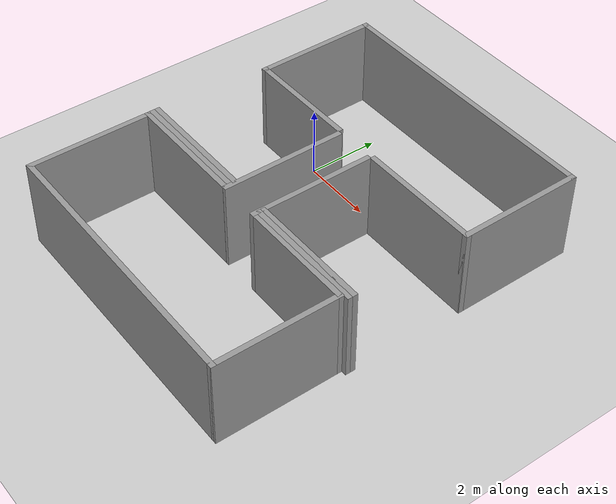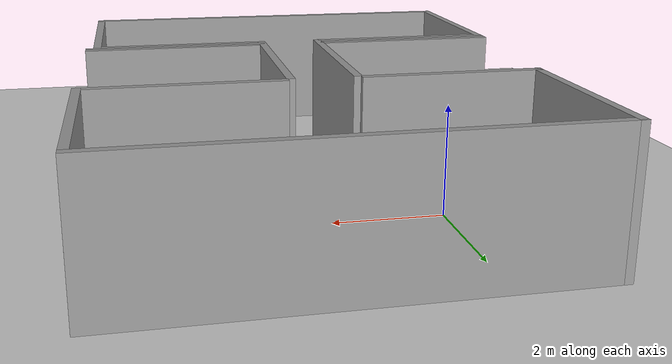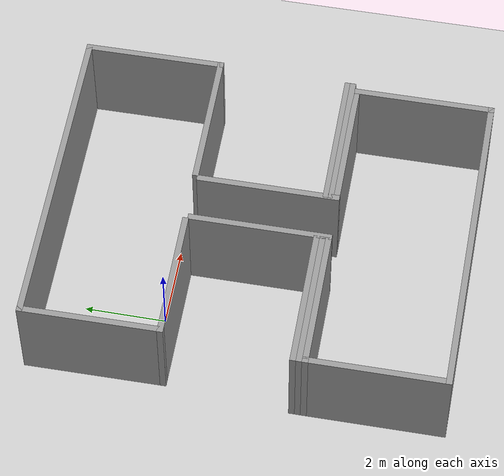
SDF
<sdf version="1.7">
 <world name="default">
  <light name="sun" type="directional">
   <pose>0 0 10 0 -0 0</pose>
   <diffuse>0.8 0.8 0.8 1</diffuse>
   <specular>0.2 0.2 0.2 1</specular>
   <attenuation>
    <range>1000</range>
    <constant>0.9</constant>
    <linear>0.01</linear>
    <quadratic>0.001</quadratic>
   </attenuation>
   <direction>-0.5 0.1 -0.9</direction>
   <spot><inner_angle>0</inner_angle><outer_angle>0</outer_angle><falloff>0</falloff></spot>
  </light>
  <model name="ground_plane">
   <static>1</static>
   <link name="link">
    <collision name="collision">
     <geometry><plane><normal>0 0 1</normal><size>100 100</size></plane></geometry>
     <surface>
      <contact><collide_bitmask>65535</collide_bitmask></contact>
      <friction><ode><mu>100</mu><mu2>50</mu2></ode></friction>
     </surface>
    </collision>
    <visual name="visual">
     <cast_shadows>0</cast_shadows>
     <geometry><plane><normal>0 0 1</normal><size>100 100</size></plane></geometry>
     <material>
      <script><uri>file://media/materials/scripts/gazebo.material</uri><name>Gazebo/Grey</name></script>
     </material>
    </visual>
   </link>
  </model>
  <gravity>0 0 -9.8</gravity>
  <magnetic_field>6e-06 2.3e-05 -4.2e-05</magnetic_field>
  <atmosphere type="adiabatic"/>
  <physics type="ode">
   <max_step_size>0.001</max_step_size>
   <real_time_factor>1</real_time_factor>
   <real_time_update_rate>1000</real_time_update_rate>
  </physics>
  <scene><ambient>0.4 0.4 0.4 1</ambient><background>0.7 0.7 0.7 1</background><shadows>1</shadows></scene>
  <spherical_coordinates>
   <surface_model>EARTH_WGS84</surface_model>
   <latitude_deg>0</latitude_deg>
   <longitude_deg>0</longitude_deg>
   <elevation>0</elevation>
   <heading_deg>0</heading_deg>
  </spherical_coordinates>
  <model name="pap5-1">
   <pose>1.97634 -4.27773 0 0 -0 0</pose>
   <link name="Wall_10">
    <collision name="Wall_10_Collision">
     <geometry><box><size>3.5 0.15 2.5</size></box></geometry>
     <pose>0 0 1.25 0 -0 0</pose>
    </collision>
    <visual name="Wall_10_Visual">
     <pose>0 0 1.25 0 -0 0</pose>
     <geometry><box><size>3.5 0.15 2.5</size></box></geometry>
     <material>
      <script><uri>file://media/materials/scripts/gazebo.material</uri><name>Gazebo/Grey</name></script>
      <ambient>1 1 1 1</ambient>
     </material>
     <meta><layer>0</layer></meta>
    </visual>
    <pose>3.925 -1.15332 0 0 -0 1.5708</pose>
   </link>
   <link name="Wall_11">
    <collision name="Wall_11_Collision">
     <geometry><box><size>3.25 0.15 2.5</size></box></geometry>
     <pose>0 0 1.25 0 -0 0</pose>
    </collision>
    <visual name="Wall_11_Visual">
     <pose>0 0 1.25 0 -0 0</pose>
     <geometry><box><size>3.25 0.15 2.5</size></box></geometry>
     <material>
      <script><uri>file://media/materials/scripts/gazebo.material</uri><name>Gazebo/Grey</name></script>
      <ambient>1 1 1 1</ambient>
     </material>
     <meta><layer>0</layer></meta>
    </visual>
    <pose>2.375 0.521675 0 0 -0 3.14159</pose>
   </link>
   <link name="Wall_7">
    <collision name="Wall_7_Collision">
     <geometry><box><size>3.5 0.15 2.5</size></box></geometry>
     <pose>0 0 1.25 0 -0 0</pose>
    </collision>
    <visual name="Wall_7_Visual">
     <pose>0 0 1.25 0 -0 0</pose>
     <geometry><box><size>3.5 0.15 2.5</size></box></geometry>
     <material>
      <script><uri>file://media/materials/scripts/gazebo.material</uri><name>Gazebo/Grey</name></script>
      <ambient>1 1 1 1</ambient>
     </material>
     <meta><layer>0</layer></meta>
    </visual>
    <pose>-2.25 0.521675 0 0 -0 3.14159</pose>
   </link>
   <link name="Wall_8">
    <collision name="Wall_8_Collision">
     <geometry><box><size>3.5 0.15 2.5</size></box></geometry>
     <pose>0 0 1.25 0 -0 0</pose>
    </collision>
    <visual name="Wall_8_Visual">
     <pose>0 0 1.25 0 -0 0</pose>
     <geometry><box><size>3.5 0.15 2.5</size></box></geometry>
     <material>
      <script><uri>file://media/materials/scripts/gazebo.material</uri><name>Gazebo/Grey</name></script>
      <ambient>1 1 1 1</ambient>
     </material>
     <meta><layer>0</layer></meta>
    </visual>
    <pose>-3.925 -1.15332 0 0 -0 -1.5708</pose>
   </link>
   <link name="Wall_9">
    <collision name="Wall_9_Collision">
     <geometry><box><size>8 0.15 2.5</size></box></geometry>
     <pose>0 0 1.25 0 -0 0</pose>
    </collision>
    <visual name="Wall_9_Visual">
     <pose>0 0 1.25 0 -0 0</pose>
     <geometry><box><size>8 0.15 2.5</size></box></geometry>
     <material>
      <script><uri>file://media/materials/scripts/gazebo.material</uri><name>Gazebo/Grey</name></script>
      <ambient>1 1 1 1</ambient>
     </material>
     <meta><layer>0</layer></meta>
    </visual>
    <pose>-0 -2.82832 0 0 -0 0</pose>
   </link>
   <static>1</static>
  </model>
  <model name="one">
   <pose>2.5284 -1.53945 0 0 -0 0</pose>
   <link name="Wall_0">
    <collision name="Wall_0_Collision">
     <geometry><box><size>3.5 0.15 2.5</size></box></geometry>
     <pose>0 0 1.25 0 -0 0</pose>
    </collision>
    <visual name="Wall_0_Visual">
     <pose>0 0 1.25 0 -0 0</pose>
     <geometry><box><size>3.5 0.15 2.5</size></box></geometry>
     <material>
      <script><uri>file://media/materials/scripts/gazebo.material</uri><name>Gazebo/Grey</name></script>
      <ambient>1 1 1 1</ambient>
     </material>
     <meta><layer>0</layer></meta>
    </visual>
    <pose>-1.02747 -0.539986 0 0 -0 -1.5708</pose>
   </link>
   <link name="Wall_4">
    <collision name="Wall_4_Collision">
     <geometry><box><size>3.5 0.15 2.5</size></box></geometry>
     <pose>0 0 1.25 0 -0 0</pose>
    </collision>
    <visual name="Wall_4_Visual">
     <pose>0 0 1.25 0 -0 0</pose>
     <geometry><box><size>3.5 0.15 2.5</size></box></geometry>
     <material>
      <script><uri>file://media/materials/scripts/gazebo.material</uri><name>Gazebo/Grey</name></script>
      <ambient>1 1 1 1</ambient>
     </material>
     <meta><layer>0</layer></meta>
    </visual>
    <pose>0.123432 -0.539986 0 0 -0 -1.5708</pose>
   </link>
   <static>1</static>
  </model>
  <model name="pap5-1_0">
   <pose>2.19945 0.239743 0 0 0 -3.13808</pose>
   <link name="Wall_10">
    <collision name="Wall_10_Collision">
     <geometry><box><size>3.5 0.15 2.5</size></box></geometry>
     <pose>0 0 1.25 0 -0 0</pose>
    </collision>
    <visual name="Wall_10_Visual">
     <pose>0 0 1.25 0 -0 0</pose>
     <geometry><box><size>3.5 0.15 2.5</size></box></geometry>
     <material>
      <script><uri>file://media/materials/scripts/gazebo.material</uri><name>Gazebo/Grey</name></script>
      <ambient>1 1 1 1</ambient>
     </material>
     <meta><layer>0</layer></meta>
    </visual>
    <pose>3.925 -1.15332 0 0 -0 1.5708</pose>
   </link>
   <link name="Wall_11">
    <collision name="Wall_11_Collision">
     <geometry><box><size>3.25 0.15 2.5</size></box></geometry>
     <pose>0 0 1.25 0 -0 0</pose>
    </collision>
    <visual name="Wall_11_Visual">
     <pose>0 0 1.25 0 -0 0</pose>
     <geometry><box><size>3.25 0.15 2.5</size></box></geometry>
     <material>
      <script><uri>file://media/materials/scripts/gazebo.material</uri><name>Gazebo/Grey</name></script>
      <ambient>1 1 1 1</ambient>
     </material>
     <meta><layer>0</layer></meta>
    </visual>
    <pose>2.375 0.521675 0 0 -0 3.14159</pose>
   </link>
   <link name="Wall_7">
    <collision name="Wall_7_Collision">
     <geometry><box><size>3.5 0.15 2.5</size></box></geometry>
     <pose>0 0 1.25 0 -0 0</pose>
    </collision>
    <visual name="Wall_7_Visual">
     <pose>0 0 1.25 0 -0 0</pose>
     <geometry><box><size>3.5 0.15 2.5</size></box></geometry>
     <material>
      <script><uri>file://media/materials/scripts/gazebo.material</uri><name>Gazebo/Grey</name></script>
      <ambient>1 1 1 1</ambient>
     </material>
     <meta><layer>0</layer></meta>
    </visual>
    <pose>-2.25 0.521675 0 0 -0 3.14159</pose>
   </link>
   <link name="Wall_8">
    <collision name="Wall_8_Collision">
     <geometry><box><size>3.5 0.15 2.5</size></box></geometry>
     <pose>0 0 1.25 0 -0 0</pose>
    </collision>
    <visual name="Wall_8_Visual">
     <pose>0 0 1.25 0 -0 0</pose>
     <geometry><box><size>3.5 0.15 2.5</size></box></geometry>
     <material>
      <script><uri>file://media/materials/scripts/gazebo.material</uri><name>Gazebo/Grey</name></script>
      <ambient>1 1 1 1</ambient>
     </material>
     <meta><layer>0</layer></meta>
    </visual>
    <pose>-3.925 -1.15332 0 0 -0 -1.5708</pose>
   </link>
   <link name="Wall_9">
    <collision name="Wall_9_Collision">
     <geometry><box><size>8 0.15 2.5</size></box></geometry>
     <pose>0 0 1.25 0 -0 0</pose>
    </collision>
    <visual name="Wall_9_Visual">
     <pose>0 0 1.25 0 -0 0</pose>
     <geometry><box><size>8 0.15 2.5</size></box></geometry>
     <material>
      <script><uri>file://media/materials/scripts/gazebo.material</uri><name>Gazebo/Grey</name></script>
      <ambient>1 1 1 1</ambient>
     </material>
     <meta><layer>0</layer></meta>
    </visual>
    <pose>-0 -2.82832 0 0 -0 0</pose>
   </link>
   <static>1</static>
  </model>
  <model name="pap5-2">
   <pose>0.314719 -4.17036 0 0 0 -1.57009</pose>
   <link name="Wall_0">
    <collision name="Wall_0_Collision">
     <geometry><box><size>3.5 0.15 2.5</size></box></geometry>
     <pose>0 0 1.25 0 -0 0</pose>
    </collision>
    <visual name="Wall_0_Visual">
     <pose>0 0 1.25 0 -0 0</pose>
     <geometry><box><size>3.5 0.15 2.5</size></box></geometry>
     <material>
      <script><uri>file://media/materials/scripts/gazebo.material</uri><name>Gazebo/Grey</name></script>
      <ambient>1 1 1 1</ambient>
     </material>
     <meta><layer>0</layer></meta>
    </visual>
    <pose>-0.5575 -0.5875 0 0 -0 -1.5708</pose>
   </link>
   <static>1</static>
  </model>
  <model name="pap5-2_clone">
   <pose>0.316121 -4.0256 0 0 0 -1.57009</pose>
   <link name="Wall_0">
    <collision name="Wall_0_Collision">
     <geometry><box><size>3.5 0.15 2.5</size></box></geometry>
     <pose>0 0 1.25 0 -0 0</pose>
    </collision>
    <visual name="Wall_0_Visual">
     <pose>0 0 1.25 0 -0 0</pose>
     <geometry><box><size>3.5 0.15 2.5</size></box></geometry>
     <material>
      <script><uri>file://media/materials/scripts/gazebo.material</uri><name>Gazebo/Grey</name></script>
      <ambient>1 1 1 1</ambient>
     </material>
     <meta><layer>0</layer></meta>
    </visual>
    <pose>-0.5575 -0.5875 0 0 -0 -1.5708</pose>
   </link>
   <static>1</static>
  </model>
  <model name="pap5-2_clone_clone">
   <pose>4.95429 -4.18234 0 0 0 -1.57009</pose>
   <link name="Wall_0">
    <collision name="Wall_0_Collision">
     <geometry><box><size>3.5 0.15 2.5</size></box></geometry>
     <pose>0 0 1.25 0 -0 0</pose>
    </collision>
    <visual name="Wall_0_Visual">
     <pose>0 0 1.25 0 -0 0</pose>
     <geometry><box><size>3.5 0.15 2.5</size></box></geometry>
     <material>
      <script><uri>file://media/materials/scripts/gazebo.material</uri><name>Gazebo/Grey</name></script>
      <ambient>1 1 1 1</ambient>
     </material>
     <meta><layer>0</layer></meta>
    </visual>
    <pose>-0.5575 -0.5875 0 0 -0 -1.5708</pose>
   </link>
   <static>1</static>
  </model>
  <model name="pap5-2_clone_clone_0">
   <pose>4.95468 -4.05166 0 0 0 -1.57009</pose>
   <link name="Wall_0">
    <collision name="Wall_0_Collision">
     <geometry><box><size>3.5 0.15 2.5</size></box></geometry>
     <pose>0 0 1.25 0 -0 0</pose>
    </collision>
    <visual name="Wall_0_Visual">
     <pose>0 0 1.25 0 -0 0</pose>
     <geometry><box><size>3.5 0.15 2.5</size></box></geometry>
     <material>
      <script><uri>file://media/materials/scripts/gazebo.material</uri><name>Gazebo/Grey</name></script>
      <ambient>1 1 1 1</ambient>
     </material>
     <meta><layer>0</layer></meta>
    </visual>
    <pose>-0.5575 -0.5875 0 0 -0 -1.5708</pose>
   </link>
   <static>1</static>
  </model>
 </world>
</sdf>
